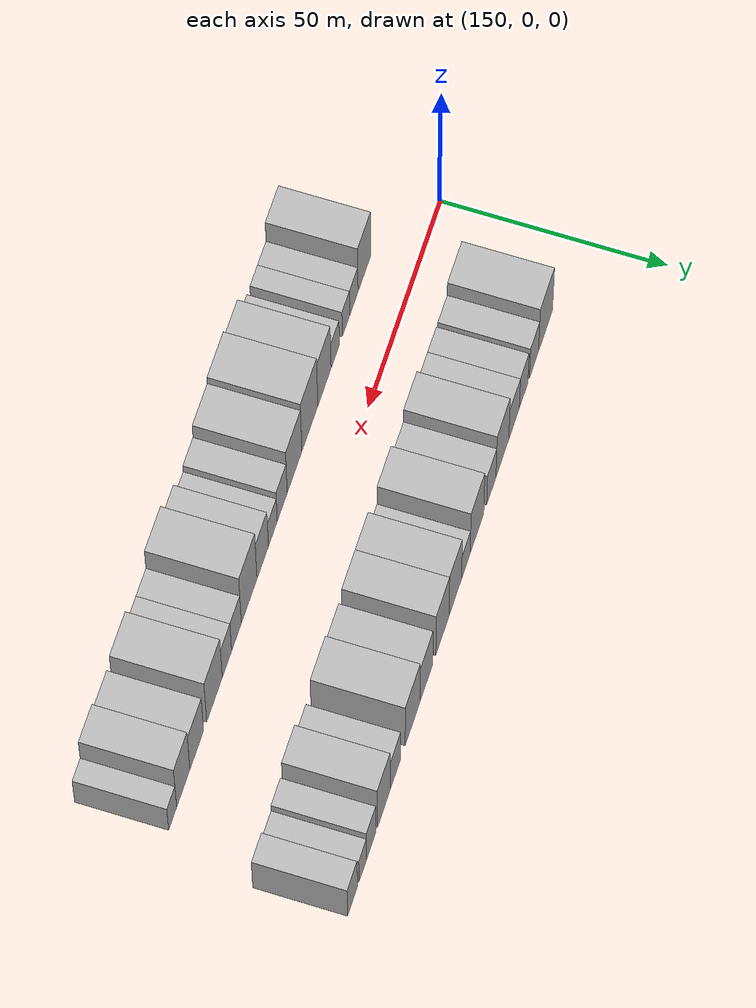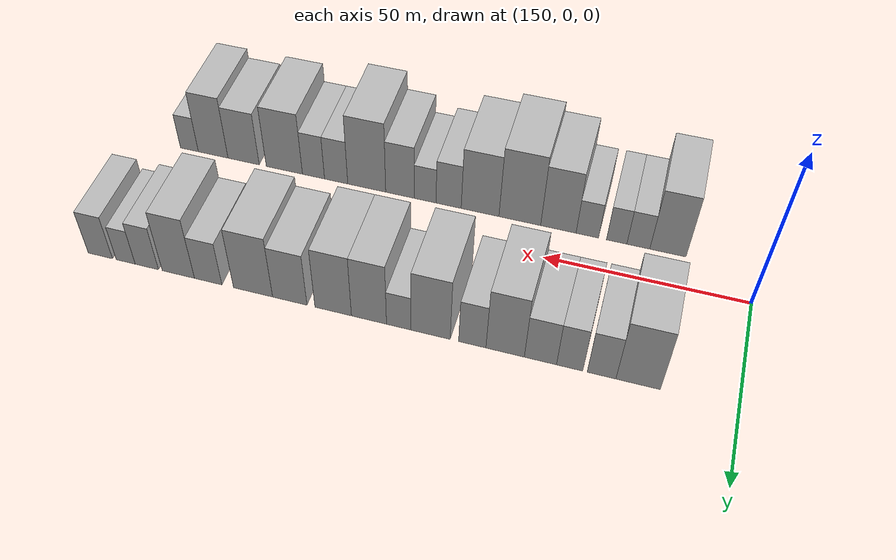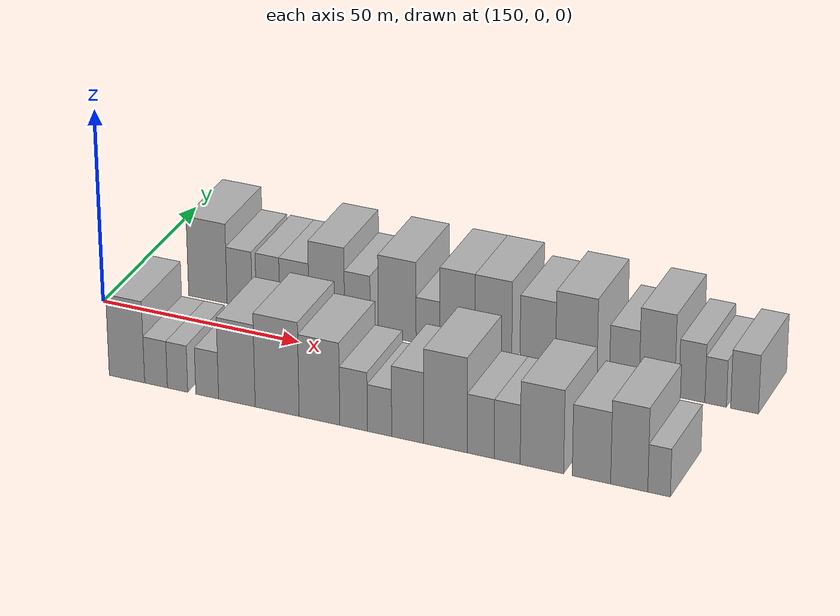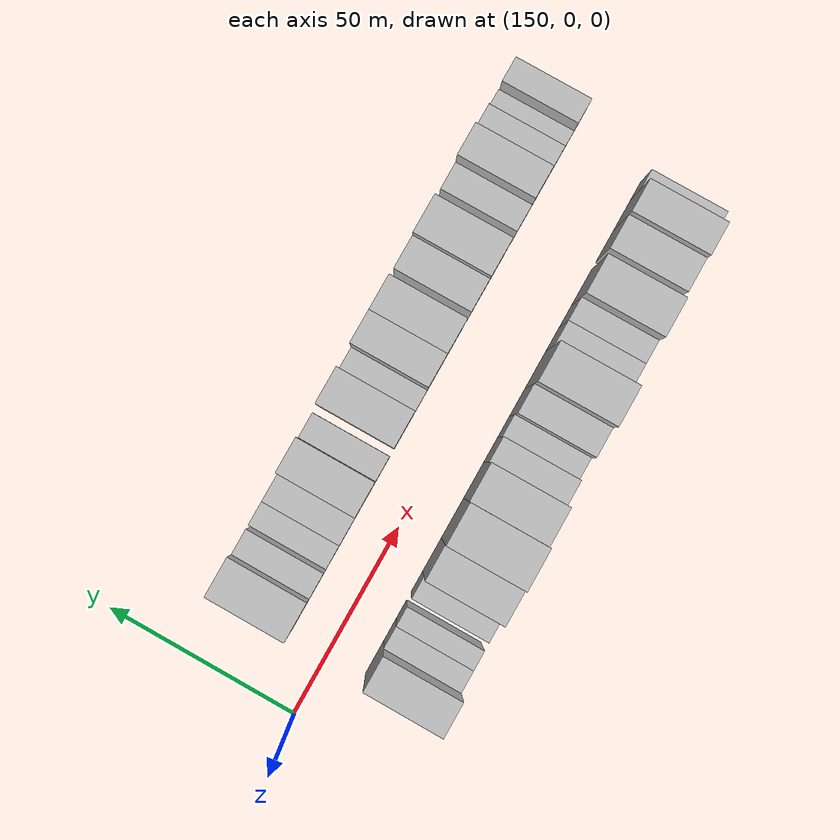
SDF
<sdf version="1.6">
 <world name="default">
  <model name="building_18">
   <static>1</static>
   <pose>172.2004 20.0000 0 0.000000 0.000000 1.570796</pose>
   <link name="link">
    <pose>0 0 10.50 0 0 0</pose>
    <collision name="collision"><geometry><box><size>20.0000 9.9352 21.0000</size></box></geometry></collision>
    <visual name="visual">
     <cast_shadows>0</cast_shadows>
     <geometry><box><size>20.0000 9.9352 21.0000</size></box></geometry>
     <material>
      <script>
       <uri>model://HANNAS_wall/materials/scripts</uri>
       <uri>model://HANNAS_wall/materials/textures</uri>
       <name>vrc/HANNAS_wall</name>
      </script>
     </material>
    </visual>
   </link>
  </model>
  <model name="building_19">
   <static>1</static>
   <pose>180.4154 20.0000 0 0.000000 0.000000 1.570796</pose>
   <link name="link">
    <pose>0 0 7.50 0 0 0</pose>
    <collision name="collision"><geometry><box><size>20.0000 6.4949 15.0000</size></box></geometry></collision>
    <visual name="visual">
     <cast_shadows>0</cast_shadows>
     <geometry><box><size>20.0000 6.4949 15.0000</size></box></geometry>
     <material>
      <script>
       <uri>model://HANNAS_wall/materials/scripts</uri>
       <uri>model://HANNAS_wall/materials/textures</uri>
       <name>vrc/HANNAS_wall</name>
      </script>
     </material>
    </visual>
   </link>
  </model>
  <model name="building_20">
   <static>1</static>
   <pose>187.6658 20.0000 0 0.000000 0.000000 1.570796</pose>
   <link name="link">
    <pose>0 0 7.50 0 0 0</pose>
    <collision name="collision"><geometry><box><size>20.0000 6.0058 15.0000</size></box></geometry></collision>
    <visual name="visual">
     <cast_shadows>0</cast_shadows>
     <geometry><box><size>20.0000 6.0058 15.0000</size></box></geometry>
     <material>
      <script>
       <uri>model://HANNAS_wall/materials/scripts</uri>
       <uri>model://HANNAS_wall/materials/textures</uri>
       <name>vrc/HANNAS_wall</name>
      </script>
     </material>
    </visual>
   </link>
  </model>
  <model name="building_21">
   <static>1</static>
   <pose>194.3858 20.0000 0 0.000000 0.000000 1.570796</pose>
   <link name="link">
    <pose>0 0 7.50 0 0 0</pose>
    <collision name="collision"><geometry><box><size>20.0000 7.4343 15.0000</size></box></geometry></collision>
    <visual name="visual">
     <cast_shadows>0</cast_shadows>
     <geometry><box><size>20.0000 7.4343 15.0000</size></box></geometry>
     <material>
      <script>
       <uri>model://HANNAS_wall/materials/scripts</uri>
       <uri>model://HANNAS_wall/materials/textures</uri>
       <name>vrc/HANNAS_wall</name>
      </script>
     </material>
    </visual>
   </link>
  </model>
  <model name="building_22">
   <static>1</static>
   <pose>202.5969 20.0000 0 0.000000 0.000000 1.570796</pose>
   <link name="link">
    <pose>0 0 10.50 0 0 0</pose>
    <collision name="collision"><geometry><box><size>20.0000 8.9879 21.0000</size></box></geometry></collision>
    <visual name="visual">
     <cast_shadows>0</cast_shadows>
     <geometry><box><size>20.0000 8.9879 21.0000</size></box></geometry>
     <material>
      <script>
       <uri>model://HANNAS_wall/materials/scripts</uri>
       <uri>model://HANNAS_wall/materials/textures</uri>
       <name>vrc/HANNAS_wall</name>
      </script>
     </material>
    </visual>
   </link>
  </model>
  <model name="building_23">
   <static>1</static>
   <pose>210.3130 20.0000 0 0.000000 0.000000 1.570796</pose>
   <link name="link">
    <pose>0 0 7.50 0 0 0</pose>
    <collision name="collision"><geometry><box><size>20.0000 6.4444 15.0000</size></box></geometry></collision>
    <visual name="visual">
     <cast_shadows>0</cast_shadows>
     <geometry><box><size>20.0000 6.4444 15.0000</size></box></geometry>
     <material>
      <script>
       <uri>model://HANNAS_wall/materials/scripts</uri>
       <uri>model://HANNAS_wall/materials/textures</uri>
       <name>vrc/HANNAS_wall</name>
      </script>
     </material>
    </visual>
   </link>
  </model>
  <model name="building_24">
   <static>1</static>
   <pose>220.2439 20.0000 0 0.000000 0.000000 1.570796</pose>
   <link name="link">
    <pose>0 0 10.50 0 0 0</pose>
    <collision name="collision"><geometry><box><size>20.0000 9.4174 21.0000</size></box></geometry></collision>
    <visual name="visual">
     <cast_shadows>0</cast_shadows>
     <geometry><box><size>20.0000 9.4174 21.0000</size></box></geometry>
     <material>
      <script>
       <uri>model://HANNAS_wall/materials/scripts</uri>
       <uri>model://HANNAS_wall/materials/textures</uri>
       <name>vrc/HANNAS_wall</name>
      </script>
     </material>
    </visual>
   </link>
  </model>
  <model name="building_25">
   <static>1</static>
   <pose>227.9159 20.0000 0 0.000000 0.000000 1.570796</pose>
   <link name="link">
    <pose>0 0 6.00 0 0 0</pose>
    <collision name="collision"><geometry><box><size>20.0000 5.9267 12.0000</size></box></geometry></collision>
    <visual name="visual">
     <cast_shadows>0</cast_shadows>
     <geometry><box><size>20.0000 5.9267 12.0000</size></box></geometry>
     <material>
      <script>
       <uri>model://HANNAS_wall/materials/scripts</uri>
       <uri>model://HANNAS_wall/materials/textures</uri>
       <name>vrc/HANNAS_wall</name>
      </script>
     </material>
    </visual>
   </link>
  </model>
  <model name="building_26">
   <static>1</static>
   <pose>235.1707 20.0000 0 0.000000 0.000000 1.570796</pose>
   <link name="link">
    <pose>0 0 10.50 0 0 0</pose>
    <collision name="collision"><geometry><box><size>20.0000 8.5828 21.0000</size></box></geometry></collision>
    <visual name="visual">
     <cast_shadows>0</cast_shadows>
     <geometry><box><size>20.0000 8.5828 21.0000</size></box></geometry>
     <material>
      <script>
       <uri>model://HANNAS_wall/materials/scripts</uri>
       <uri>model://HANNAS_wall/materials/textures</uri>
       <name>vrc/HANNAS_wall</name>
      </script>
     </material>
    </visual>
   </link>
  </model>
  <model name="building_27">
   <static>1</static>
   <pose>243.9886 20.0000 0 0.000000 0.000000 1.570796</pose>
   <link name="link">
    <pose>0 0 10.50 0 0 0</pose>
    <collision name="collision"><geometry><box><size>20.0000 9.0531 21.0000</size></box></geometry></collision>
    <visual name="visual">
     <cast_shadows>0</cast_shadows>
     <geometry><box><size>20.0000 9.0531 21.0000</size></box></geometry>
     <material>
      <script>
       <uri>model://HANNAS_wall/materials/scripts</uri>
       <uri>model://HANNAS_wall/materials/textures</uri>
       <name>vrc/HANNAS_wall</name>
      </script>
     </material>
    </visual>
   </link>
  </model>
  <model name="building_28">
   <static>1</static>
   <pose>254.8428 20.0000 0 0.000000 0.000000 1.570796</pose>
   <link name="link">
    <pose>0 0 9.00 0 0 0</pose>
    <collision name="collision"><geometry><box><size>20.0000 8.6553 18.0000</size></box></geometry></collision>
    <visual name="visual">
     <cast_shadows>0</cast_shadows>
     <geometry><box><size>20.0000 8.6553 18.0000</size></box></geometry>
     <material>
      <script>
       <uri>model://HANNAS_wall/materials/scripts</uri>
       <uri>model://HANNAS_wall/materials/textures</uri>
       <name>vrc/HANNAS_wall</name>
      </script>
     </material>
    </visual>
   </link>
  </model>
  <model name="building_29">
   <static>1</static>
   <pose>264.1635 20.0000 0 0.000000 0.000000 1.570796</pose>
   <link name="link">
    <pose>0 0 10.50 0 0 0</pose>
    <collision name="collision"><geometry><box><size>20.0000 9.9860 21.0000</size></box></geometry></collision>
    <visual name="visual">
     <cast_shadows>0</cast_shadows>
     <geometry><box><size>20.0000 9.9860 21.0000</size></box></geometry>
     <material>
      <script>
       <uri>model://HANNAS_wall/materials/scripts</uri>
       <uri>model://HANNAS_wall/materials/textures</uri>
       <name>vrc/HANNAS_wall</name>
      </script>
     </material>
    </visual>
   </link>
  </model>
  <model name="building_30">
   <static>1</static>
   <pose>275.7116 20.0000 0 0.000000 0.000000 1.570796</pose>
   <link name="link">
    <pose>0 0 7.50 0 0 0</pose>
    <collision name="collision"><geometry><box><size>20.0000 7.1102 15.0000</size></box></geometry></collision>
    <visual name="visual">
     <cast_shadows>0</cast_shadows>
     <geometry><box><size>20.0000 7.1102 15.0000</size></box></geometry>
     <material>
      <script>
       <uri>model://HANNAS_wall/materials/scripts</uri>
       <uri>model://HANNAS_wall/materials/textures</uri>
       <name>vrc/HANNAS_wall</name>
      </script>
     </material>
    </visual>
   </link>
  </model>
  <model name="building_31">
   <static>1</static>
   <pose>283.4940 20.0000 0 0.000000 0.000000 1.570796</pose>
   <link name="link">
    <pose>0 0 10.50 0 0 0</pose>
    <collision name="collision"><geometry><box><size>20.0000 8.4546 21.0000</size></box></geometry></collision>
    <visual name="visual">
     <cast_shadows>0</cast_shadows>
     <geometry><box><size>20.0000 8.4546 21.0000</size></box></geometry>
     <material>
      <script>
       <uri>model://HANNAS_wall/materials/scripts</uri>
       <uri>model://HANNAS_wall/materials/textures</uri>
       <name>vrc/HANNAS_wall</name>
      </script>
     </material>
    </visual>
   </link>
  </model>
  <model name="building_32">
   <static>1</static>
   <pose>291.8101 20.0000 0 0.000000 0.000000 1.570796</pose>
   <link name="link">
    <pose>0 0 7.50 0 0 0</pose>
    <collision name="collision"><geometry><box><size>20.0000 6.1775 15.0000</size></box></geometry></collision>
    <visual name="visual">
     <cast_shadows>0</cast_shadows>
     <geometry><box><size>20.0000 6.1775 15.0000</size></box></geometry>
     <material>
      <script>
       <uri>model://HANNAS_wall/materials/scripts</uri>
       <uri>model://HANNAS_wall/materials/textures</uri>
       <name>vrc/HANNAS_wall</name>
      </script>
     </material>
    </visual>
   </link>
  </model>
  <model name="building_33">
   <static>1</static>
   <pose>297.4344 20.0000 0 0.000000 0.000000 1.570796</pose>
   <link name="link">
    <pose>0 0 6.00 0 0 0</pose>
    <collision name="collision"><geometry><box><size>20.0000 5.0711 12.0000</size></box></geometry></collision>
    <visual name="visual">
     <cast_shadows>0</cast_shadows>
     <geometry><box><size>20.0000 5.0711 12.0000</size></box></geometry>
     <material>
      <script>
       <uri>model://HANNAS_wall/materials/scripts</uri>
       <uri>model://HANNAS_wall/materials/textures</uri>
       <name>vrc/HANNAS_wall</name>
      </script>
     </material>
    </visual>
   </link>
  </model>
  <model name="building_34">
   <static>1</static>
   <pose>304.2357 20.0000 0 0.000000 0.000000 1.570796</pose>
   <link name="link">
    <pose>0 0 7.50 0 0 0</pose>
    <collision name="collision"><geometry><box><size>20.0000 6.5314 15.0000</size></box></geometry></collision>
    <visual name="visual">
     <cast_shadows>0</cast_shadows>
     <geometry><box><size>20.0000 6.5314 15.0000</size></box></geometry>
     <material>
      <script>
       <uri>model://HANNAS_wall/materials/scripts</uri>
       <uri>model://HANNAS_wall/materials/textures</uri>
       <name>vrc/HANNAS_wall</name>
      </script>
     </material>
    </visual>
   </link>
  </model>
  <model name="building_50">
   <static>1</static>
   <pose>170.9783 -20.0000 0 0.000000 0.000000 1.570796</pose>
   <link name="link">
    <pose>0 0 10.50 0 0 0</pose>
    <collision name="collision"><geometry><box><size>20.0000 8.8819 21.0000</size></box></geometry></collision>
    <visual name="visual">
     <cast_shadows>0</cast_shadows>
     <geometry><box><size>20.0000 8.8819 21.0000</size></box></geometry>
     <material>
      <script>
       <uri>model://HANNAS_wall/materials/scripts</uri>
       <uri>model://HANNAS_wall/materials/textures</uri>
       <name>vrc/HANNAS_wall</name>
      </script>
     </material>
    </visual>
   </link>
  </model>
  <model name="building_51">
   <static>1</static>
   <pose>178.2595 -20.0000 0 0.000000 0.000000 1.570796</pose>
   <link name="link">
    <pose>0 0 6.00 0 0 0</pose>
    <collision name="collision"><geometry><box><size>20.0000 5.6805 12.0000</size></box></geometry></collision>
    <visual name="visual">
     <cast_shadows>0</cast_shadows>
     <geometry><box><size>20.0000 5.6805 12.0000</size></box></geometry>
     <material>
      <script>
       <uri>model://HANNAS_wall/materials/scripts</uri>
       <uri>model://HANNAS_wall/materials/textures</uri>
       <name>vrc/HANNAS_wall</name>
      </script>
     </material>
    </visual>
   </link>
  </model>
  <model name="building_52">
   <static>1</static>
   <pose>183.6359 -20.0000 0 0.000000 0.000000 1.570796</pose>
   <link name="link">
    <pose>0 0 6.00 0 0 0</pose>
    <collision name="collision"><geometry><box><size>20.0000 5.0723 12.0000</size></box></geometry></collision>
    <visual name="visual">
     <cast_shadows>0</cast_shadows>
     <geometry><box><size>20.0000 5.0723 12.0000</size></box></geometry>
     <material>
      <script>
       <uri>model://HANNAS_wall/materials/scripts</uri>
       <uri>model://HANNAS_wall/materials/textures</uri>
       <name>vrc/HANNAS_wall</name>
      </script>
     </material>
    </visual>
   </link>
  </model>
  <model name="building_53">
   <static>1</static>
   <pose>190.9990 -20.0000 0 0.000000 0.000000 1.570796</pose>
   <link name="link">
    <pose>0 0 6.00 0 0 0</pose>
    <collision name="collision"><geometry><box><size>20.0000 5.6539 12.0000</size></box></geometry></collision>
    <visual name="visual">
     <cast_shadows>0</cast_shadows>
     <geometry><box><size>20.0000 5.6539 12.0000</size></box></geometry>
     <material>
      <script>
       <uri>model://HANNAS_wall/materials/scripts</uri>
       <uri>model://HANNAS_wall/materials/textures</uri>
       <name>vrc/HANNAS_wall</name>
      </script>
     </material>
    </visual>
   </link>
  </model>
  <model name="building_54">
   <static>1</static>
   <pose>198.3238 -20.0000 0 0.000000 0.000000 1.570796</pose>
   <link name="link">
    <pose>0 0 10.50 0 0 0</pose>
    <collision name="collision"><geometry><box><size>20.0000 8.9957 21.0000</size></box></geometry></collision>
    <visual name="visual">
     <cast_shadows>0</cast_shadows>
     <geometry><box><size>20.0000 8.9957 21.0000</size></box></geometry>
     <material>
      <script>
       <uri>model://HANNAS_wall/materials/scripts</uri>
       <uri>model://HANNAS_wall/materials/textures</uri>
       <name>vrc/HANNAS_wall</name>
      </script>
     </material>
    </visual>
   </link>
  </model>
  <model name="building_55">
   <static>1</static>
   <pose>208.1954 -20.0000 0 0.000000 0.000000 1.570796</pose>
   <link name="link">
    <pose>0 0 12.00 0 0 0</pose>
    <collision name="collision"><geometry><box><size>20.0000 10.7476 24.0000</size></box></geometry></collision>
    <visual name="visual">
     <cast_shadows>0</cast_shadows>
     <geometry><box><size>20.0000 10.7476 24.0000</size></box></geometry>
     <material>
      <script>
       <uri>model://HANNAS_wall/materials/scripts</uri>
       <uri>model://HANNAS_wall/materials/textures</uri>
       <name>vrc/HANNAS_wall</name>
      </script>
     </material>
    </visual>
   </link>
  </model>
  <model name="building_56">
   <static>1</static>
   <pose>218.4985 -20.0000 0 0.000000 0.000000 1.570796</pose>
   <link name="link">
    <pose>0 0 10.50 0 0 0</pose>
    <collision name="collision"><geometry><box><size>20.0000 9.8584 21.0000</size></box></geometry></collision>
    <visual name="visual">
     <cast_shadows>0</cast_shadows>
     <geometry><box><size>20.0000 9.8584 21.0000</size></box></geometry>
     <material>
      <script>
       <uri>model://HANNAS_wall/materials/scripts</uri>
       <uri>model://HANNAS_wall/materials/textures</uri>
       <name>vrc/HANNAS_wall</name>
      </script>
     </material>
    </visual>
   </link>
  </model>
  <model name="building_57">
   <static>1</static>
   <pose>226.7543 -20.0000 0 0.000000 0.000000 1.570796</pose>
   <link name="link">
    <pose>0 0 7.50 0 0 0</pose>
    <collision name="collision"><geometry><box><size>20.0000 6.6532 15.0000</size></box></geometry></collision>
    <visual name="visual">
     <cast_shadows>0</cast_shadows>
     <geometry><box><size>20.0000 6.6532 15.0000</size></box></geometry>
     <material>
      <script>
       <uri>model://HANNAS_wall/materials/scripts</uri>
       <uri>model://HANNAS_wall/materials/textures</uri>
       <name>vrc/HANNAS_wall</name>
      </script>
     </material>
    </visual>
   </link>
  </model>
  <model name="building_58">
   <static>1</static>
   <pose>232.9922 -20.0000 0 0.000000 0.000000 1.570796</pose>
   <link name="link">
    <pose>0 0 6.00 0 0 0</pose>
    <collision name="collision"><geometry><box><size>20.0000 5.8227 12.0000</size></box></geometry></collision>
    <visual name="visual">
     <cast_shadows>0</cast_shadows>
     <geometry><box><size>20.0000 5.8227 12.0000</size></box></geometry>
     <material>
      <script>
       <uri>model://HANNAS_wall/materials/scripts</uri>
       <uri>model://HANNAS_wall/materials/textures</uri>
       <name>vrc/HANNAS_wall</name>
      </script>
     </material>
    </visual>
   </link>
  </model>
  <model name="building_59">
   <static>1</static>
   <pose>239.7053 -20.0000 0 0.000000 0.000000 1.570796</pose>
   <link name="link">
    <pose>0 0 9.00 0 0 0</pose>
    <collision name="collision"><geometry><box><size>20.0000 7.6035 18.0000</size></box></geometry></collision>
    <visual name="visual">
     <cast_shadows>0</cast_shadows>
     <geometry><box><size>20.0000 7.6035 18.0000</size></box></geometry>
     <material>
      <script>
       <uri>model://HANNAS_wall/materials/scripts</uri>
       <uri>model://HANNAS_wall/materials/textures</uri>
       <name>vrc/HANNAS_wall</name>
      </script>
     </material>
    </visual>
   </link>
  </model>
  <model name="building_60">
   <static>1</static>
   <pose>248.6630 -20.0000 0 0.000000 0.000000 1.570796</pose>
   <link name="link">
    <pose>0 0 12.00 0 0 0</pose>
    <collision name="collision"><geometry><box><size>20.0000 10.3118 24.0000</size></box></geometry></collision>
    <visual name="visual">
     <cast_shadows>0</cast_shadows>
     <geometry><box><size>20.0000 10.3118 24.0000</size></box></geometry>
     <material>
      <script>
       <uri>model://HANNAS_wall/materials/scripts</uri>
       <uri>model://HANNAS_wall/materials/textures</uri>
       <name>vrc/HANNAS_wall</name>
      </script>
     </material>
    </visual>
   </link>
  </model>
  <model name="building_61">
   <static>1</static>
   <pose>257.0058 -20.0000 0 0.000000 0.000000 1.570796</pose>
   <link name="link">
    <pose>0 0 7.50 0 0 0</pose>
    <collision name="collision"><geometry><box><size>20.0000 6.3739 15.0000</size></box></geometry></collision>
    <visual name="visual">
     <cast_shadows>0</cast_shadows>
     <geometry><box><size>20.0000 6.3739 15.0000</size></box></geometry>
     <material>
      <script>
       <uri>model://HANNAS_wall/materials/scripts</uri>
       <uri>model://HANNAS_wall/materials/textures</uri>
       <name>vrc/HANNAS_wall</name>
      </script>
     </material>
    </visual>
   </link>
  </model>
  <model name="building_62">
   <static>1</static>
   <pose>263.2469 -20.0000 0 0.000000 0.000000 1.570796</pose>
   <link name="link">
    <pose>0 0 7.50 0 0 0</pose>
    <collision name="collision"><geometry><box><size>20.0000 6.1083 15.0000</size></box></geometry></collision>
    <visual name="visual">
     <cast_shadows>0</cast_shadows>
     <geometry><box><size>20.0000 6.1083 15.0000</size></box></geometry>
     <material>
      <script>
       <uri>model://HANNAS_wall/materials/scripts</uri>
       <uri>model://HANNAS_wall/materials/textures</uri>
       <name>vrc/HANNAS_wall</name>
      </script>
     </material>
    </visual>
   </link>
  </model>
  <model name="building_63">
   <static>1</static>
   <pose>271.3573 -20.0000 0 0.000000 0.000000 1.570796</pose>
   <link name="link">
    <pose>0 0 10.50 0 0 0</pose>
    <collision name="collision"><geometry><box><size>20.0000 10.1124 21.0000</size></box></geometry></collision>
    <visual name="visual">
     <cast_shadows>0</cast_shadows>
     <geometry><box><size>20.0000 10.1124 21.0000</size></box></geometry>
     <material>
      <script>
       <uri>model://HANNAS_wall/materials/scripts</uri>
       <uri>model://HANNAS_wall/materials/textures</uri>
       <name>vrc/HANNAS_wall</name>
      </script>
     </material>
    </visual>
   </link>
  </model>
  <model name="building_64">
   <static>1</static>
   <pose>282.8412 -20.0000 0 0.000000 0.000000 1.570796</pose>
   <link name="link">
    <pose>0 0 9.00 0 0 0</pose>
    <collision name="collision"><geometry><box><size>20.0000 8.8554 18.0000</size></box></geometry></collision>
    <visual name="visual">
     <cast_shadows>0</cast_shadows>
     <geometry><box><size>20.0000 8.8554 18.0000</size></box></geometry>
     <material>
      <script>
       <uri>model://HANNAS_wall/materials/scripts</uri>
       <uri>model://HANNAS_wall/materials/textures</uri>
       <name>vrc/HANNAS_wall</name>
      </script>
     </material>
    </visual>
   </link>
  </model>
  <model name="building_65">
   <static>1</static>
   <pose>291.5247 -20.0000 0 0.000000 0.000000 1.570796</pose>
   <link name="link">
    <pose>0 0 10.50 0 0 0</pose>
    <collision name="collision"><geometry><box><size>20.0000 8.5116 21.0000</size></box></geometry></collision>
    <visual name="visual">
     <cast_shadows>0</cast_shadows>
     <geometry><box><size>20.0000 8.5116 21.0000</size></box></geometry>
     <material>
      <script>
       <uri>model://HANNAS_wall/materials/scripts</uri>
       <uri>model://HANNAS_wall/materials/textures</uri>
       <name>vrc/HANNAS_wall</name>
      </script>
     </material>
    </visual>
   </link>
  </model>
  <model name="building_66">
   <static>1</static>
   <pose>298.3608 -20.0000 0 0.000000 0.000000 1.570796</pose>
   <link name="link">
    <pose>0 0 6.00 0 0 0</pose>
    <collision name="collision"><geometry><box><size>20.0000 5.1606 12.0000</size></box></geometry></collision>
    <visual name="visual">
     <cast_shadows>0</cast_shadows>
     <geometry><box><size>20.0000 5.1606 12.0000</size></box></geometry>
     <material>
      <script>
       <uri>model://HANNAS_wall/materials/scripts</uri>
       <uri>model://HANNAS_wall/materials/textures</uri>
       <name>vrc/HANNAS_wall</name>
      </script>
     </material>
    </visual>
   </link>
  </model>
 </world>
</sdf>
